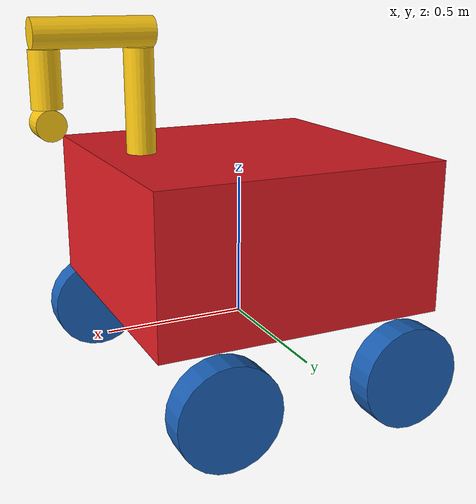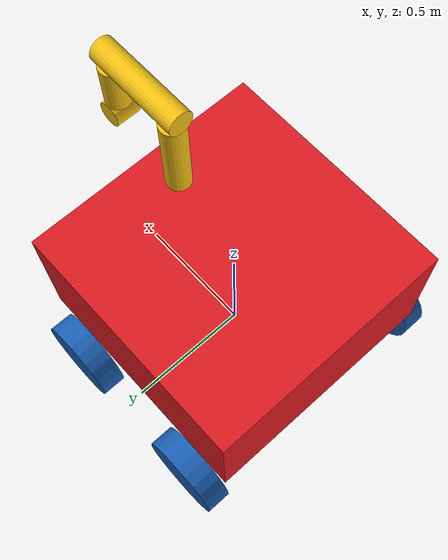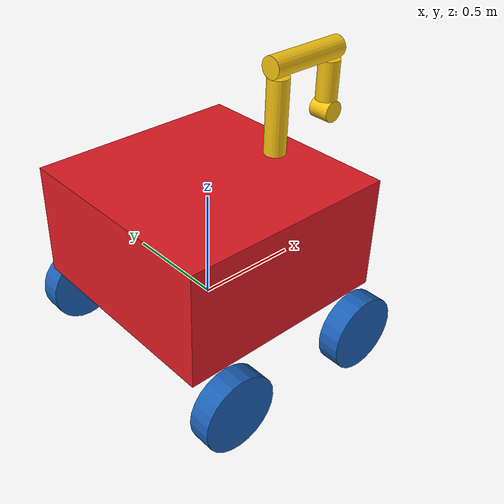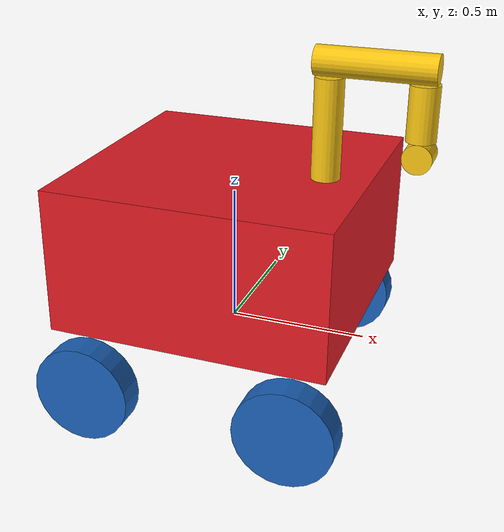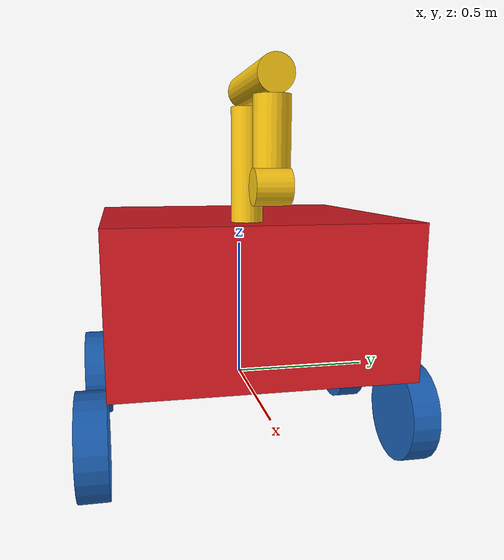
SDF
<?xml version='1.0'?>
<sdf version='1.7'>
  <model name='rover_v4'>
    <link name='chassis'>
      <inertial>
        <mass>1</mass>
        <inertia>
          <ixx>0.105867</ixx>
          <ixy>0</ixy>
          <ixz>0</ixz>
          <iyy>0.105867</iyy>
          <iyz>0</iyz>
          <izz>0.166667</izz>
        </inertia>
    <pose>0 0 0.35 0 0 0</pose> <!-- Z=0.2 to avoid collision with the ground -->

      </inertial>
      <gravity>1</gravity>
      <self_collide>0</self_collide>
      <kinematic>0</kinematic>
      <enable_wind>0</enable_wind>
      <visual name='chassis_visual'>
    <pose>0 0 0.35 0 0 0</pose> <!-- Z=0.2 to avoid collision with the ground -->
        <geometry>
          <box>
            <size>1 1 0.52</size>
          </box>
        </geometry>
        <material>
          <lighting>1</lighting>
          <script>
            <uri>file://media/materials/scripts/gazebo.material</uri>
            <name>Gazebo/Grey</name>
          </script>
          <shader type='pixel'>
            <normal_map>__default__</normal_map>
          </shader>
          <ambient>0.875 0.106 0.137 1</ambient>
          <diffuse>0.875 0.106 0.137 1</diffuse>
          <specular>0.878 0.106 0.141 1</specular>
          <emissive>0.878 0.106 0.141 1</emissive>
        </material>
        <transparency>0</transparency>
        <cast_shadows>1</cast_shadows>
      </visual>
      <collision name='chassis_collision'>
        <laser_retro>0</laser_retro>
        <max_contacts>10</max_contacts>
    <pose>0 0 0.35 0 0 0</pose><!-- Z=0.2 to avoid collision with the ground -->

        <geometry>
          <box>
            <size>1 1 0.52</size>
          </box>
        </geometry>
        <surface>
          <friction>
            <ode>
              <mu>1</mu>
              <mu2>1</mu2>
              <fdir1>0 0 0</fdir1>
              <slip1>0</slip1>
              <slip2>0</slip2>
            </ode>
            <torsional>
              <coefficient>1</coefficient>
              <patch_radius>0</patch_radius>
              <surface_radius>0</surface_radius>
              <use_patch_radius>1</use_patch_radius>
              <ode>
                <slip>0</slip>
              </ode>
            </torsional>
          </friction>
          <bounce>
            <restitution_coefficient>0</restitution_coefficient>
            <threshold>1e+06</threshold>
          </bounce>
          <contact>
            <collide_without_contact>0</collide_without_contact>
            <collide_without_contact_bitmask>1</collide_without_contact_bitmask>
            <collide_bitmask>1</collide_bitmask>
            <ode>
              <soft_cfm>0</soft_cfm>
              <soft_erp>0.2</soft_erp>
              <kp>1e+13</kp>
              <kd>1</kd>
              <max_vel>0.01</max_vel>
              <min_depth>0</min_depth>
            </ode>
            <bullet>
              <split_impulse>1</split_impulse>
              <split_impulse_penetration_threshold>-0.01</split_impulse_penetration_threshold>
              <soft_cfm>0</soft_cfm>
              <soft_erp>0.2</soft_erp>
              <kp>1e+13</kp>
              <kd>1</kd>
            </bullet>
          </contact>
        </surface>
      </collision>
    </link>
    <link name='link_0_0'>
      <inertial>
        <mass>1</mass>
        <inertia>
          <ixx>0.145833</ixx>
          <ixy>0</ixy>
          <ixz>0</ixz>
          <iyy>0.145833</iyy>
          <iyz>0</iyz>
          <izz>0.125</izz>
        </inertia>
        <pose>0 0 0 0 -0 0</pose>
      </inertial>
      <pose>0.344444 -0.044643 0.783004 0 -0 0.00099</pose>
      <gravity>1</gravity>
      <self_collide>0</self_collide>
      <kinematic>0</kinematic>
      <enable_wind>0</enable_wind>
      <visual name='visual'>
        <pose>0 0 0 0 -0 0</pose>
        <geometry>
          <cylinder>
            <radius>0.05</radius>
            <length>0.35</length>
          </cylinder>
        </geometry>
        <material>
          <lighting>1</lighting>
          <script>
            <uri>file://media/materials/scripts/gazebo.material</uri>
            <name>Gazebo/Grey</name>
          </script>
          <shader type='pixel'>
            <normal_map>__default__</normal_map>
          </shader>
          <ambient>0.961 0.761 0.067 1</ambient>
          <diffuse>0.961 0.761 0.067 1</diffuse>
          <specular>0.961 0.761 0.067 1</specular>
          <emissive>0.961 0.761 0.067 1</emissive>
        </material>
        <transparency>0</transparency>
        <cast_shadows>1</cast_shadows>
      </visual>
      <collision name='collision'>
        <laser_retro>0</laser_retro>
        <max_contacts>10</max_contacts>
        <pose>0 0 0 0 -0 0</pose>
        <geometry>
          <cylinder>
            <radius>0.05</radius>
            <length>0.35</length>
          </cylinder>
        </geometry>
        <surface>
          <friction>
            <ode>
              <mu>1</mu>
              <mu2>1</mu2>
              <fdir1>0 0 0</fdir1>
              <slip1>0</slip1>
              <slip2>0</slip2>
            </ode>
            <torsional>
              <coefficient>1</coefficient>
              <patch_radius>0</patch_radius>
              <surface_radius>0</surface_radius>
              <use_patch_radius>1</use_patch_radius>
              <ode>
                <slip>0</slip>
              </ode>
            </torsional>
          </friction>
          <bounce>
            <restitution_coefficient>0</restitution_coefficient>
            <threshold>1e+06</threshold>
          </bounce>
          <contact>
            <collide_without_contact>0</collide_without_contact>
            <collide_without_contact_bitmask>1</collide_without_contact_bitmask>
            <collide_bitmask>1</collide_bitmask>
            <ode>
              <soft_cfm>0</soft_cfm>
              <soft_erp>0.2</soft_erp>
              <kp>1e+13</kp>
              <kd>1</kd>
              <max_vel>0.01</max_vel>
              <min_depth>0</min_depth>
            </ode>
            <bullet>
              <split_impulse>1</split_impulse>
              <split_impulse_penetration_threshold>-0.01</split_impulse_penetration_threshold>
              <soft_cfm>0</soft_cfm>
              <soft_erp>0.2</soft_erp>
              <kp>1e+13</kp>
              <kd>1</kd>
            </bullet>
          </contact>
        </surface>
      </collision>
    </link>
    <link name='lfw'>
      <inertial>
        <mass>1</mass>
        <inertia>
          <ixx>0.145833</ixx>
          <ixy>0</ixy>
          <ixz>0</ixz>
          <iyy>0.145833</iyy>
          <iyz>0</iyz>
          <izz>0.125</izz>
        </inertia>
        <pose>0 0 0 0 -0 0</pose>
      </inertial>
      <pose>0.308905 0.550017 -0.087001 0 -0 0</pose>
      <gravity>1</gravity>
      <self_collide>0</self_collide>
      <kinematic>0</kinematic>
      <enable_wind>0</enable_wind>
      <visual name='lfw_visual'>
        <pose>0 0 0 1.5707 -0 0</pose>
        <geometry>
          <cylinder>
            <radius>0.175</radius>
            <length>0.1</length>
          </cylinder>
        </geometry>
        <material>
          <lighting>1</lighting>
          <script>
            <uri>file://media/materials/scripts/gazebo.material</uri>
            <name>Gazebo/Grey</name>
          </script>
          <shader type='pixel'>
            <normal_map>__default__</normal_map>
          </shader>
          <ambient>0.102 0.373 0.706 1</ambient>
          <diffuse>0.102 0.373 0.706 1</diffuse>
          <specular>0.102 0.373 0.706 1</specular>
          <emissive>0.102 0.373 0.706 1</emissive>
        </material>
        <transparency>0</transparency>
        <cast_shadows>1</cast_shadows>
      </visual>
      <collision name='lfw_collision'>
        <laser_retro>0</laser_retro>
        <max_contacts>10</max_contacts>
        <pose>0 0 0 1.5707 -0 0</pose>
        <geometry>
          <cylinder>
            <radius>0.175</radius>
            <length>0.1</length>
          </cylinder>
        </geometry>
        <surface>
          <friction>
            <ode>
              <mu>1</mu>
              <mu2>1</mu2>
              <fdir1>0 0 0</fdir1>
              <slip1>0</slip1>
              <slip2>0</slip2>
            </ode>
            <torsional>
              <coefficient>1</coefficient>
              <patch_radius>0</patch_radius>
              <surface_radius>0</surface_radius>
              <use_patch_radius>1</use_patch_radius>
              <ode>
                <slip>0</slip>
              </ode>
            </torsional>
          </friction>
          <bounce>
            <restitution_coefficient>0</restitution_coefficient>
            <threshold>1e+06</threshold>
          </bounce>
          <contact>
            <collide_without_contact>0</collide_without_contact>
            <collide_without_contact_bitmask>1</collide_without_contact_bitmask>
            <collide_bitmask>1</collide_bitmask>
            <ode>
              <soft_cfm>0</soft_cfm>
              <soft_erp>0.2</soft_erp>
              <kp>1e+13</kp>
              <kd>1</kd>
              <max_vel>0.01</max_vel>
              <min_depth>0</min_depth>
            </ode>
            <bullet>
              <split_impulse>1</split_impulse>
              <split_impulse_penetration_threshold>-0.01</split_impulse_penetration_threshold>
              <soft_cfm>0</soft_cfm>
              <soft_erp>0.2</soft_erp>
              <kp>1e+13</kp>
              <kd>1</kd>
            </bullet>
          </contact>
        </surface>
      </collision>
    </link>
    <link name='link_1_0'>
      <inertial>
        <mass>1</mass>
        <inertia>
          <ixx>0.145833</ixx>
          <ixy>0</ixy>
          <ixz>0</ixz>
          <iyy>0.145833</iyy>
          <iyz>0</iyz>
          <izz>0.125</izz>
        </inertia>
        <pose>0 0 0 0 -0 0</pose>
      </inertial>
      <pose>0.494449 -0.044495 1.00802 0 -0 0.00099</pose>
      <gravity>1</gravity>
      <self_collide>0</self_collide>
      <kinematic>0</kinematic>
      <enable_wind>0</enable_wind>
      <visual name='visual'>
        <pose>0 0 0 0 1.5707 0</pose>
        <geometry>
          <cylinder>
            <radius>0.05</radius>
            <length>0.4</length>
          </cylinder>
        </geometry>
        <material>
          <lighting>1</lighting>
          <script>
            <uri>file://media/materials/scripts/gazebo.material</uri>
            <name>Gazebo/Grey</name>
          </script>
          <shader type='pixel'>
            <normal_map>__default__</normal_map>
          </shader>
          <ambient>0.961 0.761 0.067 1</ambient>
          <diffuse>0.961 0.761 0.067 1</diffuse>
          <specular>0.961 0.761 0.067 1</specular>
          <emissive>0.961 0.761 0.067 1</emissive>
        </material>
        <transparency>0</transparency>
        <cast_shadows>1</cast_shadows>
      </visual>
      <collision name='collision'>
        <laser_retro>0</laser_retro>
        <max_contacts>10</max_contacts>
        <pose>0 0 0 0 1.5707 0</pose>
        <geometry>
          <cylinder>
            <radius>0.05</radius>
            <length>0.4</length>
          </cylinder>
        </geometry>
        <surface>
          <friction>
            <ode>
              <mu>1</mu>
              <mu2>1</mu2>
              <fdir1>0 0 0</fdir1>
              <slip1>0</slip1>
              <slip2>0</slip2>
            </ode>
            <torsional>
              <coefficient>1</coefficient>
              <patch_radius>0</patch_radius>
              <surface_radius>0</surface_radius>
              <use_patch_radius>1</use_patch_radius>
              <ode>
                <slip>0</slip>
              </ode>
            </torsional>
          </friction>
          <bounce>
            <restitution_coefficient>0</restitution_coefficient>
            <threshold>1e+06</threshold>
          </bounce>
          <contact>
            <collide_without_contact>0</collide_without_contact>
            <collide_without_contact_bitmask>1</collide_without_contact_bitmask>
            <collide_bitmask>1</collide_bitmask>
            <ode>
              <soft_cfm>0</soft_cfm>
              <soft_erp>0.2</soft_erp>
              <kp>1e+13</kp>
              <kd>1</kd>
              <max_vel>0.01</max_vel>
              <min_depth>0</min_depth>
            </ode>
            <bullet>
              <split_impulse>1</split_impulse>
              <split_impulse_penetration_threshold>-0.01</split_impulse_penetration_threshold>
              <soft_cfm>0</soft_cfm>
              <soft_erp>0.2</soft_erp>
              <kp>1e+13</kp>
              <kd>1</kd>
            </bullet>
          </contact>
        </surface>
      </collision>
    </link>
    <link name='lbw'>
      <inertial>
        <mass>1</mass>
        <inertia>
          <ixx>0.145833</ixx>
          <ixy>0</ixy>
          <ixz>0</ixz>
          <iyy>0.145833</iyy>
          <iyz>0</iyz>
          <izz>0.125</izz>
        </inertia>
        <pose>0 0 0 0 -0 0</pose>
      </inertial>
      <pose>-0.341095 0.550017 -0.087001 0 -0 0</pose>
      <gravity>1</gravity>
      <self_collide>0</self_collide>
      <kinematic>0</kinematic>
      <enable_wind>0</enable_wind>
      <visual name='lbw_visual'>
        <pose>0 0 0 1.5707 -0 0</pose>
        <geometry>
          <cylinder>
            <radius>0.175</radius>
            <length>0.1</length>
          </cylinder>
        </geometry>
        <material>
          <lighting>1</lighting>
          <script>
            <uri>file://media/materials/scripts/gazebo.material</uri>
            <name>Gazebo/Grey</name>
          </script>
          <shader type='pixel'>
            <normal_map>__default__</normal_map>
          </shader>
          <ambient>0.102 0.373 0.706 1</ambient>
          <diffuse>0.102 0.373 0.706 1</diffuse>
          <specular>0.102 0.373 0.706 1</specular>
          <emissive>0.102 0.373 0.706 1</emissive>
        </material>
        <transparency>0</transparency>
        <cast_shadows>1</cast_shadows>
      </visual>
      <collision name='lbw_collision'>
        <laser_retro>0</laser_retro>
        <max_contacts>10</max_contacts>
        <pose>0 0 0 1.5707 -0 0</pose>
        <geometry>
          <cylinder>
            <radius>0.175</radius>
            <length>0.1</length>
          </cylinder>
        </geometry>
        <surface>
          <friction>
            <ode>
              <mu>1</mu>
              <mu2>1</mu2>
              <fdir1>0 0 0</fdir1>
              <slip1>0</slip1>
              <slip2>0</slip2>
            </ode>
            <torsional>
              <coefficient>1</coefficient>
              <patch_radius>0</patch_radius>
              <surface_radius>0</surface_radius>
              <use_patch_radius>1</use_patch_radius>
              <ode>
                <slip>0</slip>
              </ode>
            </torsional>
          </friction>
          <bounce>
            <restitution_coefficient>0</restitution_coefficient>
            <threshold>1e+06</threshold>
          </bounce>
          <contact>
            <collide_without_contact>0</collide_without_contact>
            <collide_without_contact_bitmask>1</collide_without_contact_bitmask>
            <collide_bitmask>1</collide_bitmask>
            <ode>
              <soft_cfm>0</soft_cfm>
              <soft_erp>0.2</soft_erp>
              <kp>1e+13</kp>
              <kd>1</kd>
              <max_vel>0.01</max_vel>
              <min_depth>0</min_depth>
            </ode>
            <bullet>
              <split_impulse>1</split_impulse>
              <split_impulse_penetration_threshold>-0.01</split_impulse_penetration_threshold>
              <soft_cfm>0</soft_cfm>
              <soft_erp>0.2</soft_erp>
              <kp>1e+13</kp>
              <kd>1</kd>
            </bullet>
          </contact>
        </surface>
      </collision>
    </link>
    <link name='rbw'>
      <inertial>
        <mass>1</mass>
        <inertia>
          <ixx>0.145833</ixx>
          <ixy>0</ixy>
          <ixz>0</ixz>
          <iyy>0.145833</iyy>
          <iyz>0</iyz>
          <izz>0.125</izz>
        </inertia>
        <pose>0 0 0 0 -0 0</pose>
      </inertial>
      <pose>-0.341095 -0.550017 -0.087001 0 -0 0</pose>
      <gravity>1</gravity>
      <self_collide>0</self_collide>
      <kinematic>0</kinematic>
      <enable_wind>0</enable_wind>
      <visual name='rbw_visual'>
        <pose>0 0 0 1.5707 -0 0</pose>
        <geometry>
          <cylinder>
            <radius>0.175</radius>
            <length>0.1</length>
          </cylinder>
        </geometry>
        <material>
          <lighting>1</lighting>
          <script>
            <uri>file://media/materials/scripts/gazebo.material</uri>
            <name>Gazebo/Grey</name>
          </script>
          <shader type='pixel'>
            <normal_map>__default__</normal_map>
          </shader>
          <ambient>0.102 0.373 0.706 1</ambient>
          <diffuse>0.102 0.373 0.706 1</diffuse>
          <specular>0.01 0.01 0.01 1</specular>
          <emissive>0.102 0.373 0.706 1</emissive>
        </material>
        <transparency>0</transparency>
        <cast_shadows>1</cast_shadows>
      </visual>
      <collision name='rbw_collision'>
        <laser_retro>0</laser_retro>
        <max_contacts>10</max_contacts>
        <pose>0 0 0 1.5707 -0 0</pose>
        <geometry>
          <cylinder>
            <radius>0.175</radius>
            <length>0.1</length>
          </cylinder>
        </geometry>
        <surface>
          <friction>
            <ode>
              <mu>1</mu>
              <mu2>1</mu2>
              <fdir1>0 0 0</fdir1>
              <slip1>0</slip1>
              <slip2>0</slip2>
            </ode>
            <torsional>
              <coefficient>1</coefficient>
              <patch_radius>0</patch_radius>
              <surface_radius>0</surface_radius>
              <use_patch_radius>1</use_patch_radius>
              <ode>
                <slip>0</slip>
              </ode>
            </torsional>
          </friction>
          <bounce>
            <restitution_coefficient>0</restitution_coefficient>
            <threshold>1e+06</threshold>
          </bounce>
          <contact>
            <collide_without_contact>0</collide_without_contact>
            <collide_without_contact_bitmask>1</collide_without_contact_bitmask>
            <collide_bitmask>1</collide_bitmask>
            <ode>
              <soft_cfm>0</soft_cfm>
              <soft_erp>0.2</soft_erp>
              <kp>1e+13</kp>
              <kd>1</kd>
              <max_vel>0.01</max_vel>
              <min_depth>0</min_depth>
            </ode>
            <bullet>
              <split_impulse>1</split_impulse>
              <split_impulse_penetration_threshold>-0.01</split_impulse_penetration_threshold>
              <soft_cfm>0</soft_cfm>
              <soft_erp>0.2</soft_erp>
              <kp>1e+13</kp>
              <kd>1</kd>
            </bullet>
          </contact>
        </surface>
      </collision>
    </link>
    <link name='rfw'>
      <inertial>
        <mass>1</mass>
        <inertia>
          <ixx>0.145833</ixx>
          <ixy>0</ixy>
          <ixz>0</ixz>
          <iyy>0.145833</iyy>
          <iyz>0</iyz>
          <izz>0.125</izz>
        </inertia>
        <pose>0 0 0 0 -0 0</pose>
      </inertial>
      <pose>0.389382 -0.550017 -0.087001 0 -0 0</pose>
      <gravity>1</gravity>
      <self_collide>0</self_collide>
      <kinematic>0</kinematic>
      <enable_wind>0</enable_wind>
      <visual name='rfw_visual'>
        <pose>0 0 0 1.5707 -0 0</pose>
        <geometry>
          <cylinder>
            <radius>0.175</radius>
            <length>0.1</length>
          </cylinder>
        </geometry>
        <material>
          <lighting>1</lighting>
          <script>
            <uri>file://media/materials/scripts/gazebo.material</uri>
            <name>Gazebo/Grey</name>
          </script>
          <shader type='vertex'>
            <normal_map>__default__</normal_map>
          </shader>
          <ambient>0.102 0.373 0.706 1</ambient>
          <diffuse>0.102 0.373 0.706 1</diffuse>
          <specular>0.102 0.373 0.706 1</specular>
          <emissive>0.102 0.373 0.706 1</emissive>
        </material>
        <transparency>0</transparency>
        <cast_shadows>1</cast_shadows>
      </visual>
      <collision name='rfw_collision'>
        <laser_retro>0</laser_retro>
        <max_contacts>10</max_contacts>
        <pose>0 0 0 1.5707 -0 0</pose>
        <geometry>
          <cylinder>
            <radius>0.175</radius>
            <length>0.1</length>
          </cylinder>
        </geometry>
        <surface>
          <friction>
            <ode>
              <mu>1</mu>
              <mu2>1</mu2>
              <fdir1>0 0 0</fdir1>
              <slip1>0</slip1>
              <slip2>0</slip2>
            </ode>
            <torsional>
              <coefficient>1</coefficient>
              <patch_radius>0</patch_radius>
              <surface_radius>0</surface_radius>
              <use_patch_radius>1</use_patch_radius>
              <ode>
                <slip>0</slip>
              </ode>
            </torsional>
          </friction>
          <bounce>
            <restitution_coefficient>0</restitution_coefficient>
            <threshold>1e+06</threshold>
          </bounce>
          <contact>
            <collide_without_contact>0</collide_without_contact>
            <collide_without_contact_bitmask>1</collide_without_contact_bitmask>
            <collide_bitmask>1</collide_bitmask>
            <ode>
              <soft_cfm>0</soft_cfm>
              <soft_erp>0.2</soft_erp>
              <kp>1e+13</kp>
              <kd>1</kd>
              <max_vel>0.01</max_vel>
              <min_depth>0</min_depth>
            </ode>
            <bullet>
              <split_impulse>1</split_impulse>
              <split_impulse_penetration_threshold>-0.01</split_impulse_penetration_threshold>
              <soft_cfm>0</soft_cfm>
              <soft_erp>0.2</soft_erp>
              <kp>1e+13</kp>
              <kd>1</kd>
            </bullet>
          </contact>
        </surface>
      </collision>
    </link>
    <link name='link_2'>
      <inertial>
        <mass>1</mass>
        <inertia>
          <ixx>0.145833</ixx>
          <ixy>0</ixy>
          <ixz>0</ixz>
          <iyy>0.145833</iyy>
          <iyz>0</iyz>
          <izz>0.125</izz>
        </inertia>
        <pose>0 0 0 0 -0 0</pose>
      </inertial>
      <pose>0.653838 -0.044337 0.868001 0 -0 0.00099</pose>
      <gravity>1</gravity>
      <self_collide>0</self_collide>
      <kinematic>0</kinematic>
      <enable_wind>0</enable_wind>
      <visual name='visual'>
        <pose>0 0 0 0 -0 0</pose>
        <geometry>
          <cylinder>
            <radius>0.05</radius>
            <length>0.185</length>
          </cylinder>
        </geometry>
        <material>
          <lighting>1</lighting>
          <script>
            <uri>file://media/materials/scripts/gazebo.material</uri>
            <name>Gazebo/Grey</name>
          </script>
          <shader type='pixel'>
            <normal_map>__default__</normal_map>
          </shader>
          <ambient>0.961 0.761 0.067 1</ambient>
          <diffuse>0.961 0.761 0.067 1</diffuse>
          <specular>0.961 0.761 0.067 1</specular>
          <emissive>0.961 0.761 0.067 1</emissive>
        </material>
        <transparency>0</transparency>
        <cast_shadows>1</cast_shadows>
      </visual>
      <collision name='collision'>
        <laser_retro>0</laser_retro>
        <max_contacts>10</max_contacts>
        <pose>0 0 0 0 -0 0</pose>
        <geometry>
          <cylinder>
            <radius>0.05</radius>
            <length>0.185</length>
          </cylinder>
        </geometry>
        <surface>
          <friction>
            <ode>
              <mu>1</mu>
              <mu2>1</mu2>
              <fdir1>0 0 0</fdir1>
              <slip1>0</slip1>
              <slip2>0</slip2>
            </ode>
            <torsional>
              <coefficient>1</coefficient>
              <patch_radius>0</patch_radius>
              <surface_radius>0</surface_radius>
              <use_patch_radius>1</use_patch_radius>
              <ode>
                <slip>0</slip>
              </ode>
            </torsional>
          </friction>
          <bounce>
            <restitution_coefficient>0</restitution_coefficient>
            <threshold>1e+06</threshold>
          </bounce>
          <contact>
            <collide_without_contact>0</collide_without_contact>
            <collide_without_contact_bitmask>1</collide_without_contact_bitmask>
            <collide_bitmask>1</collide_bitmask>
            <ode>
              <soft_cfm>0</soft_cfm>
              <soft_erp>0.2</soft_erp>
              <kp>1e+13</kp>
              <kd>1</kd>
              <max_vel>0.01</max_vel>
              <min_depth>0</min_depth>
            </ode>
            <bullet>
              <split_impulse>1</split_impulse>
              <split_impulse_penetration_threshold>-0.01</split_impulse_penetration_threshold>
              <soft_cfm>0</soft_cfm>
              <soft_erp>0.2</soft_erp>
              <kp>1e+13</kp>
              <kd>1</kd>
            </bullet>
          </contact>
        </surface>
      </collision>
    </link>
    <link name='link_3'>
      <inertial>
        <mass>1</mass>
        <inertia>
          <ixx>0.145833</ixx>
          <ixy>0</ixy>
          <ixz>0</ixz>
          <iyy>0.145833</iyy>
          <iyz>0</iyz>
          <izz>0.125</izz>
        </inertia>
        <pose>0 0 0 0 -0 0</pose>
      </inertial>
      <pose>0.653838 -0.044335 0.726753 0 -0 0.00099</pose>
      <gravity>1</gravity>
      <self_collide>0</self_collide>
      <kinematic>0</kinematic>
      <enable_wind>0</enable_wind>
      <visual name='visual'>
        <pose>0 0 0 1.5707 -0 0</pose>
        <geometry>
          <cylinder>
            <radius>0.05</radius>
            <length>0.1</length>
          </cylinder>
        </geometry>
        <material>
          <lighting>1</lighting>
          <script>
            <uri>file://media/materials/scripts/gazebo.material</uri>
            <name>Gazebo/Grey</name>
          </script>
          <shader type='pixel'>
            <normal_map>__default__</normal_map>
          </shader>
          <ambient>0.961 0.761 0.067 1</ambient>
          <diffuse>0.961 0.761 0.067 1</diffuse>
          <specular>0.961 0.761 0.067 1</specular>
          <emissive>0.961 0.761 0.067 1</emissive>
        </material>
        <transparency>0</transparency>
        <cast_shadows>1</cast_shadows>
      </visual>
      <collision name='collision'>
        <laser_retro>0</laser_retro>
        <max_contacts>10</max_contacts>
        <pose>0 0 0 1.5707 -0 0</pose>
        <geometry>
          <cylinder>
            <radius>0.05</radius>
            <length>0.1</length>
          </cylinder>
        </geometry>
        <surface>
          <friction>
            <ode>
              <mu>1</mu>
              <mu2>1</mu2>
              <fdir1>0 0 0</fdir1>
              <slip1>0</slip1>
              <slip2>0</slip2>
            </ode>
            <torsional>
              <coefficient>1</coefficient>
              <patch_radius>0</patch_radius>
              <surface_radius>0</surface_radius>
              <use_patch_radius>1</use_patch_radius>
              <ode>
                <slip>0</slip>
              </ode>
            </torsional>
          </friction>
          <bounce>
            <restitution_coefficient>0</restitution_coefficient>
            <threshold>1e+06</threshold>
          </bounce>
          <contact>
            <collide_without_contact>0</collide_without_contact>
            <collide_without_contact_bitmask>1</collide_without_contact_bitmask>
            <collide_bitmask>1</collide_bitmask>
            <ode>
              <soft_cfm>0</soft_cfm>
              <soft_erp>0.2</soft_erp>
              <kp>1e+13</kp>
              <kd>1</kd>
              <max_vel>0.01</max_vel>
              <min_depth>0</min_depth>
            </ode>
            <bullet>
              <split_impulse>1</split_impulse>
              <split_impulse_penetration_threshold>-0.01</split_impulse_penetration_threshold>
              <soft_cfm>0</soft_cfm>
              <soft_erp>0.2</soft_erp>
              <kp>1e+13</kp>
              <kd>1</kd>
            </bullet>
          </contact>
        </surface>
      </collision>
    </link>
    <joint name='left-front-wheel' type='revolute'>
      <parent>chassis</parent>
      <child>lfw</child>
      <pose>0 0 0 0 -0 0</pose>
      <axis>
        <xyz>0 1 0</xyz>
        <limit>
          <lower>-1.79769e+308</lower>
          <upper>1.79769e+308</upper>
          <effort>-1</effort>
          <velocity>-1</velocity>
        </limit>
        <dynamics>
          <spring_reference>0</spring_reference>
          <spring_stiffness>0</spring_stiffness>
          <damping>0</damping>
          <friction>0</friction>
        </dynamics>
      </axis>
      <physics>
        <ode>
          <limit>
            <cfm>0</cfm>
            <erp>0.2</erp>
          </limit>
          <suspension>
            <cfm>0</cfm>
            <erp>0.2</erp>
          </suspension>
        </ode>
      </physics>
    </joint>
    <joint name='link_0_JOINT_1_0' type='revolute'>
      <parent>chassis</parent>
      <child>link_0_0</child>
      <pose>0 0 0 0 -0 0</pose>
      <axis>
        <xyz>0 0 1</xyz>
        <limit>
          <lower>-1.79769e+308</lower>
          <upper>1.79769e+308</upper>
          <effort>-1</effort>
          <velocity>-1</velocity>
        </limit>
        <dynamics>
          <spring_reference>0</spring_reference>
          <spring_stiffness>0</spring_stiffness>
          <damping>0</damping>
          <friction>0</friction>
        </dynamics>
      </axis>
      <physics>
        <ode>
          <limit>
            <cfm>0</cfm>
            <erp>0.2</erp>
          </limit>
          <suspension>
            <cfm>0</cfm>
            <erp>0.2</erp>
          </suspension>
        </ode>
      </physics>
    </joint>
    <joint name='left-back-wheel' type='revolute'>
      <parent>chassis</parent>
      <child>lbw</child>
      <pose>0 0 0 0 -0 0</pose>
      <axis>
        <xyz>0 1 0</xyz>
        <limit>
          <lower>-1.79769e+308</lower>
          <upper>1.79769e+308</upper>
          <effort>-1</effort>
          <velocity>-1</velocity>
        </limit>
        <dynamics>
          <spring_reference>0</spring_reference>
          <spring_stiffness>0</spring_stiffness>
          <damping>0</damping>
          <friction>0</friction>
        </dynamics>
      </axis>
      <physics>
        <ode>
          <limit>
            <cfm>0</cfm>
            <erp>0.2</erp>
          </limit>
          <suspension>
            <cfm>0</cfm>
            <erp>0.2</erp>
          </suspension>
        </ode>
      </physics>
    </joint>
    <joint name='right-front-wheel' type='revolute'>
      <parent>chassis</parent>
      <child>rfw</child>
      <pose>0 0 0 0 -0 0</pose>
      <axis>
        <xyz>0 1 0</xyz>
        <limit>
          <lower>-1.79769e+308</lower>
          <upper>1.79769e+308</upper>
          <effort>-1</effort>
          <velocity>-1</velocity>
        </limit>
        <dynamics>
          <spring_reference>0</spring_reference>
          <spring_stiffness>0</spring_stiffness>
          <damping>0</damping>
          <friction>0</friction>
        </dynamics>
      </axis>
      <physics>
        <ode>
          <limit>
            <cfm>0</cfm>
            <erp>0.2</erp>
          </limit>
          <suspension>
            <cfm>0</cfm>
            <erp>0.2</erp>
          </suspension>
        </ode>
      </physics>
    </joint>
    <joint name='right-back-wheel' type='revolute'>
      <parent>chassis</parent>
      <child>rbw</child>
      <pose>0 0 0 0 -0 0</pose>
      <axis>
        <xyz>0 1 0</xyz>
        <limit>
          <lower>-1.79769e+308</lower>
          <upper>1.79769e+308</upper>
          <effort>-1</effort>
          <velocity>-1</velocity>
        </limit>
        <dynamics>
          <spring_reference>0</spring_reference>
          <spring_stiffness>0</spring_stiffness>
          <damping>0</damping>
          <friction>0</friction>
        </dynamics>
      </axis>
      <physics>
        <ode>
          <limit>
            <cfm>0</cfm>
            <erp>0.2</erp>
          </limit>
          <suspension>
            <cfm>0</cfm>
            <erp>0.2</erp>
          </suspension>
        </ode>
      </physics>
    </joint>
    <joint name='link_1_0_JOINT_0' type='fixed'>
      <parent>link_1_0</parent>
      <child>link_2</child>
      <pose>0 0 0 0 -0 0</pose>
      <physics>
        <ode>
          <limit>
            <cfm>0</cfm>
            <erp>0.2</erp>
          </limit>
          <suspension>
            <cfm>0</cfm>
            <erp>0.2</erp>
          </suspension>
        </ode>
      </physics>
    </joint>
    <joint name='link_1_0_JOINT_2' type='fixed'>
      <parent>link_0_0</parent>
      <child>link_1_0</child>
      <pose>0 0 0 0 -0 0</pose>
      <physics>
        <ode>
          <limit>
            <cfm>0</cfm>
            <erp>0.2</erp>
          </limit>
          <suspension>
            <cfm>0</cfm>
            <erp>0.2</erp>
          </suspension>
        </ode>
      </physics>
    </joint>
    <joint name='link_1_0_JOINT_3' type='prismatic'>
      <parent>link_1_0</parent>
      <child>link_2</child>
      <pose>0 0 0 0 -0 0</pose>
      <axis>
        <xyz>1 0 0</xyz>
        <limit>
          <lower>-1.79769e+308</lower>
          <upper>1.79769e+308</upper>
          <effort>-1</effort>
          <velocity>-1</velocity>
        </limit>
        <dynamics>
          <spring_reference>0</spring_reference>
          <spring_stiffness>0</spring_stiffness>
          <damping>0</damping>
          <friction>0</friction>
        </dynamics>
      </axis>
      <physics>
        <ode>
          <limit>
            <cfm>0</cfm>
            <erp>0.2</erp>
          </limit>
          <suspension>
            <cfm>0</cfm>
            <erp>0.2</erp>
          </suspension>
        </ode>
      </physics>
    </joint>
    <joint name='link_2_JOINT_4' type='revolute'>
      <parent>link_2</parent>
      <child>link_3</child>
      <pose>0 0 0 0 -0 0</pose>
      <axis>
        <xyz>1 0 0</xyz>
        <limit>
          <lower>-1.79769e+308</lower>
          <upper>1.79769e+308</upper>
          <effort>-1</effort>
          <velocity>-1</velocity>
        </limit>
        <dynamics>
          <spring_reference>0</spring_reference>
          <spring_stiffness>0</spring_stiffness>
          <damping>0</damping>
          <friction>0</friction>
        </dynamics>
      </axis>
      <physics>
        <ode>
          <limit>
            <cfm>0</cfm>
            <erp>0.2</erp>
          </limit>
          <suspension>
            <cfm>0</cfm>
            <erp>0.2</erp>
          </suspension>
        </ode>
      </physics>
    </joint>
    <static>0</static>
    <allow_auto_disable>1</allow_auto_disable>
    <plugin name="diff_drive_controller" filename="libgazebo_ros_diff_drive.so">
      <ros>
        <namespace>model</namespace>
        <remapping>cmd_vel:=/cmd_vel</remapping>
      </ros>

      <!-- Joint names -->
      <left_joint>left-front-wheel</left_joint>

      <right_joint>right-front-wheel</right_joint>

      <!-- Physical properties -->
      <wheel_separation>1.1</wheel_separation> <!-- Distance between wheels -->
      <wheel_radius>0.35</wheel_radius> <!-- Radius of the wheel -->

      <!-- ROS 2 topic where velocity commands are published -->
      <command_topic>/cmd_vel</command_topic>

      <!-- Odom info -->
      <odometry_frame>odom</odometry_frame>
      <robot_base_frame>chassis</robot_base_frame>

      <!-- Other control parameters -->
      <update_rate>50</update_rate>
      <publish_tf>true</publish_tf>
    </plugin>
  </model>
</sdf>
